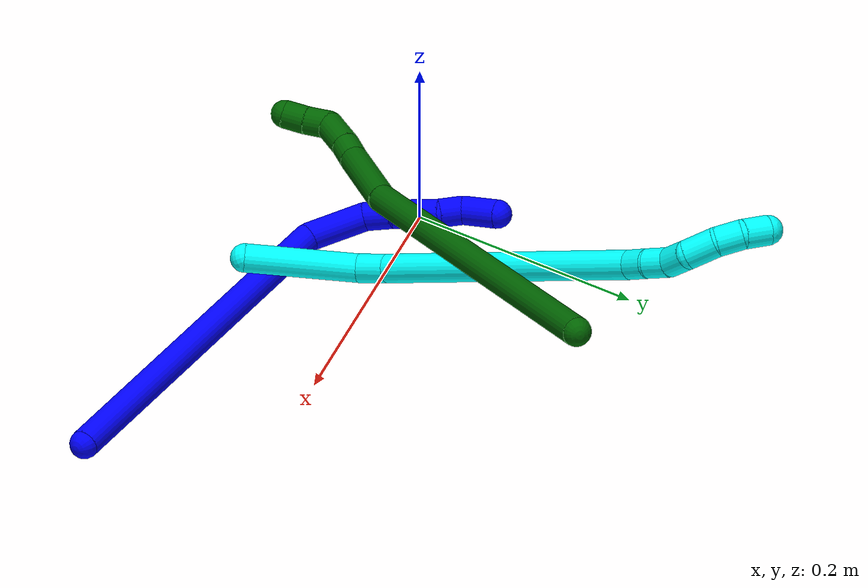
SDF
<sdf version="1.7">
 <world name="default">
  <model name="1">
   <static>0</static>
   <link name="1">
    <collision name="collision-cylinder-e_1_1_4">
     <pose>-0.016482 -0.009009 -0.163016 3.08638 -0.100614 -2.13835</pose>
     <geometry><cylinder><radius>0.0125</radius><length>0.32819</length></cylinder></geometry>
     <surface>
      <friction><ode><mu>1.16</mu><mu2>1.16</mu2><slip1>0</slip1><slip2>0</slip2></ode></friction>
      <contact><ode><kp>1e+06</kp><kd>1</kd><max_vel>0</max_vel><min_depth>0.001</min_depth></ode></contact>
     </surface>
    </collision>
    <visual name="visual-cylinder-e_1_1_4">
     <pose>-0.016482 -0.009009 -0.163016 3.08638 -0.100614 -2.13835</pose>
     <geometry><cylinder><radius>0.0125</radius><length>0.32819</length></cylinder></geometry>
     <material><ambient>0 0 1 1</ambient></material>
    </visual>
    <collision name="collision-cylinder-e_2_4_5">
     <pose>-0.042324 -0.002231 -0.344861 -2.44381 -0.363937 0.936588</pose>
     <geometry><cylinder><radius>0.0125</radius><length>0.052586</length></cylinder></geometry>
     <surface>
      <friction><ode><mu>1.16</mu><mu2>1.16</mu2><slip1>0</slip1><slip2>0</slip2></ode></friction>
      <contact><ode><kp>1e+06</kp><kd>1</kd><max_vel>0</max_vel><min_depth>0.001</min_depth></ode></contact>
     </surface>
    </collision>
    <visual name="visual-cylinder-e_2_4_5">
     <pose>-0.042324 -0.002231 -0.344861 -2.44381 -0.363937 0.936588</pose>
     <geometry><cylinder><radius>0.0125</radius><length>0.052586</length></cylinder></geometry>
     <material><ambient>0 0 1 1</ambient></material>
    </visual>
    <collision name="collision-cylinder-e_3_5_6">
     <pose>-0.056415 0.024815 -0.367709 -1.91379 -0.376904 0.528572</pose>
     <geometry><cylinder><radius>0.0125</radius><length>0.025715</length></cylinder></geometry>
     <surface>
      <friction><ode><mu>1.16</mu><mu2>1.16</mu2><slip1>0</slip1><slip2>0</slip2></ode></friction>
      <contact><ode><kp>1e+06</kp><kd>1</kd><max_vel>0</max_vel><min_depth>0.001</min_depth></ode></contact>
     </surface>
    </collision>
    <visual name="visual-cylinder-e_3_5_6">
     <pose>-0.056415 0.024815 -0.367709 -1.91379 -0.376904 0.528572</pose>
     <geometry><cylinder><radius>0.0125</radius><length>0.025715</length></cylinder></geometry>
     <material><ambient>0 0 1 1</ambient></material>
    </visual>
    <collision name="collision-cylinder-e_4_6_7">
     <pose>-0.065465 0.053141 -0.381028 -2.06966 -0.218614 0.365413</pose>
     <geometry><cylinder><radius>0.0125</radius><length>0.039819</length></cylinder></geometry>
     <surface>
      <friction><ode><mu>1.16</mu><mu2>1.16</mu2><slip1>0</slip1><slip2>0</slip2></ode></friction>
      <contact><ode><kp>1e+06</kp><kd>1</kd><max_vel>0</max_vel><min_depth>0.001</min_depth></ode></contact>
     </surface>
    </collision>
    <visual name="visual-cylinder-e_4_6_7">
     <pose>-0.065465 0.053141 -0.381028 -2.06966 -0.218614 0.365413</pose>
     <geometry><cylinder><radius>0.0125</radius><length>0.039819</length></cylinder></geometry>
     <material><ambient>0 0 1 1</ambient></material>
    </visual>
    <collision name="collision-cylinder-e_5_7_8">
     <pose>-0.071224 0.07743 -0.39789 -2.37927 -0.136872 0.338788</pose>
     <geometry><cylinder><radius>0.0125</radius><length>0.021112</length></cylinder></geometry>
     <surface>
      <friction><ode><mu>1.16</mu><mu2>1.16</mu2><slip1>0</slip1><slip2>0</slip2></ode></friction>
      <contact><ode><kp>1e+06</kp><kd>1</kd><max_vel>0</max_vel><min_depth>0.001</min_depth></ode></contact>
     </surface>
    </collision>
    <visual name="visual-cylinder-e_5_7_8">
     <pose>-0.071224 0.07743 -0.39789 -2.37927 -0.136872 0.338788</pose>
     <geometry><cylinder><radius>0.0125</radius><length>0.021112</length></cylinder></geometry>
     <material><ambient>0 0 1 1</ambient></material>
    </visual>
    <collision name="collision-cylinder-e_6_8_2">
     <pose>-0.076664 0.100091 -0.408761 -1.78182 -0.248112 0.306063</pose>
     <geometry><cylinder><radius>0.0125</radius><length>0.032577</length></cylinder></geometry>
     <surface>
      <friction><ode><mu>1.16</mu><mu2>1.16</mu2><slip1>0</slip1><slip2>0</slip2></ode></friction>
      <contact><ode><kp>1e+06</kp><kd>1</kd><max_vel>0</max_vel><min_depth>0.001</min_depth></ode></contact>
     </surface>
    </collision>
    <visual name="visual-cylinder-e_6_8_2">
     <pose>-0.076664 0.100091 -0.408761 -1.78182 -0.248112 0.306063</pose>
     <geometry><cylinder><radius>0.0125</radius><length>0.032577</length></cylinder></geometry>
     <material><ambient>0 0 1 1</ambient></material>
    </visual>
    <collision name="collision-sphere-2">
     <pose>-0.080664 0.115531 -0.412068 0 -0 0</pose>
     <geometry><sphere><radius>0.0125</radius></sphere></geometry>
     <surface>
      <friction><ode><mu>1.16</mu><mu2>1.16</mu2><slip1>0</slip1><slip2>0</slip2></ode></friction>
      <contact><ode><kp>1e+06</kp><kd>1</kd><max_vel>0</max_vel><min_depth>0.001</min_depth></ode></contact>
     </surface>
    </collision>
    <visual name="visual-sphere-2">
     <pose>-0.080664 0.115531 -0.412068 0 -0 0</pose>
     <geometry><sphere><radius>0.0125</radius></sphere></geometry>
     <material><ambient>0 0 1 1</ambient></material>
    </visual>
    <collision name="collision-sphere-4">
     <pose>-0.032965 -0.018019 -0.326033 0 -0 0</pose>
     <geometry><sphere><radius>0.0125</radius></sphere></geometry>
     <surface>
      <friction><ode><mu>1.16</mu><mu2>1.16</mu2><slip1>0</slip1><slip2>0</slip2></ode></friction>
      <contact><ode><kp>1e+06</kp><kd>1</kd><max_vel>0</max_vel><min_depth>0.001</min_depth></ode></contact>
     </surface>
    </collision>
    <visual name="visual-sphere-4">
     <pose>-0.032965 -0.018019 -0.326033 0 -0 0</pose>
     <geometry><sphere><radius>0.0125</radius></sphere></geometry>
     <material><ambient>0 0 1 1</ambient></material>
    </visual>
    <collision name="collision-sphere-1">
     <geometry><sphere><radius>0.0125</radius></sphere></geometry>
     <surface>
      <friction><ode><mu>1.16</mu><mu2>1.16</mu2><slip1>0</slip1><slip2>0</slip2></ode></friction>
      <contact><ode><kp>1e+06</kp><kd>1</kd><max_vel>0</max_vel><min_depth>0.001</min_depth></ode></contact>
     </surface>
    </collision>
    <visual name="visual-sphere-1">
     <geometry><sphere><radius>0.0125</radius></sphere></geometry>
     <material><ambient>0 0 1 1</ambient></material>
    </visual>
    <collision name="collision-sphere-8">
     <pose>-0.072664 0.084652 -0.405453 0 -0 0</pose>
     <geometry><sphere><radius>0.0125</radius></sphere></geometry>
     <surface>
      <friction><ode><mu>1.16</mu><mu2>1.16</mu2><slip1>0</slip1><slip2>0</slip2></ode></friction>
      <contact><ode><kp>1e+06</kp><kd>1</kd><max_vel>0</max_vel><min_depth>0.001</min_depth></ode></contact>
     </surface>
    </collision>
    <visual name="visual-sphere-8">
     <pose>-0.072664 0.084652 -0.405453 0 -0 0</pose>
     <geometry><sphere><radius>0.0125</radius></sphere></geometry>
     <material><ambient>0 0 1 1</ambient></material>
    </visual>
    <collision name="collision-sphere-5">
     <pose>-0.051683 0.013556 -0.363689 0 -0 0</pose>
     <geometry><sphere><radius>0.0125</radius></sphere></geometry>
     <surface>
      <friction><ode><mu>1.16</mu><mu2>1.16</mu2><slip1>0</slip1><slip2>0</slip2></ode></friction>
      <contact><ode><kp>1e+06</kp><kd>1</kd><max_vel>0</max_vel><min_depth>0.001</min_depth></ode></contact>
     </surface>
    </collision>
    <visual name="visual-sphere-5">
     <pose>-0.051683 0.013556 -0.363689 0 -0 0</pose>
     <geometry><sphere><radius>0.0125</radius></sphere></geometry>
     <material><ambient>0 0 1 1</ambient></material>
    </visual>
    <collision name="collision-sphere-6">
     <pose>-0.061147 0.036074 -0.37173 0 -0 0</pose>
     <geometry><sphere><radius>0.0125</radius></sphere></geometry>
     <surface>
      <friction><ode><mu>1.16</mu><mu2>1.16</mu2><slip1>0</slip1><slip2>0</slip2></ode></friction>
      <contact><ode><kp>1e+06</kp><kd>1</kd><max_vel>0</max_vel><min_depth>0.001</min_depth></ode></contact>
     </surface>
    </collision>
    <visual name="visual-sphere-6">
     <pose>-0.061147 0.036074 -0.37173 0 -0 0</pose>
     <geometry><sphere><radius>0.0125</radius></sphere></geometry>
     <material><ambient>0 0 1 1</ambient></material>
    </visual>
    <collision name="collision-sphere-7">
     <pose>-0.069783 0.070208 -0.390327 0 -0 0</pose>
     <geometry><sphere><radius>0.0125</radius></sphere></geometry>
     <surface>
      <friction><ode><mu>1.16</mu><mu2>1.16</mu2><slip1>0</slip1><slip2>0</slip2></ode></friction>
      <contact><ode><kp>1e+06</kp><kd>1</kd><max_vel>0</max_vel><min_depth>0.001</min_depth></ode></contact>
     </surface>
    </collision>
    <visual name="visual-sphere-7">
     <pose>-0.069783 0.070208 -0.390327 0 -0 0</pose>
     <geometry><sphere><radius>0.0125</radius></sphere></geometry>
     <material><ambient>0 0 1 1</ambient></material>
    </visual>
    <inertial>
     <pose>-0.031387 0.009151 -0.23596 0 -0 0</pose>
     <mass>0.5</mass>
     <inertia>
      <ixx>-0.004034</ixx>
      <ixy>0</ixy>
      <ixz>0</ixz>
      <iyy>-0.000864</iyy>
      <iyz>0</iyz>
      <izz>0.000415</izz>
     </inertia>
    </inertial>
   </link>
   <pose>0.388502 -0.114221 0.080601 0.302176 1.24822 0.120667</pose>
  </model>
  <model name="3">
   <static>0</static>
   <link name="3">
    <collision name="collision-cylinder-e_1_1_4">
     <pose>-0.018673 0.025532 0.036896 -0.605334 -0.394379 0.124609</pose>
     <geometry><cylinder><radius>0.0125</radius><length>0.097198</length></cylinder></geometry>
     <surface>
      <friction><ode><mu>1.16</mu><mu2>1.16</mu2><slip1>0</slip1><slip2>0</slip2></ode></friction>
      <contact><ode><kp>1e+06</kp><kd>1</kd><max_vel>0</max_vel><min_depth>0.001</min_depth></ode></contact>
     </surface>
    </collision>
    <visual name="visual-cylinder-e_1_1_4">
     <pose>-0.018673 0.025532 0.036896 -0.605334 -0.394379 0.124609</pose>
     <geometry><cylinder><radius>0.0125</radius><length>0.097198</length></cylinder></geometry>
     <material><ambient>0.003922 1 0.996078 1</ambient></material>
    </visual>
    <collision name="collision-cylinder-e_2_4_5">
     <pose>-0.037482 0.055346 0.086834 -0.317299 -0.009873 0.00158</pose>
     <geometry><cylinder><radius>0.0125</radius><length>0.027456</length></cylinder></geometry>
     <surface>
      <friction><ode><mu>1.16</mu><mu2>1.16</mu2><slip1>0</slip1><slip2>0</slip2></ode></friction>
      <contact><ode><kp>1e+06</kp><kd>1</kd><max_vel>0</max_vel><min_depth>0.001</min_depth></ode></contact>
     </surface>
    </collision>
    <visual name="visual-cylinder-e_2_4_5">
     <pose>-0.037482 0.055346 0.086834 -0.317299 -0.009873 0.00158</pose>
     <geometry><cylinder><radius>0.0125</radius><length>0.027456</length></cylinder></geometry>
     <material><ambient>0.003922 1 0.996078 1</ambient></material>
    </visual>
    <collision name="collision-cylinder-e_3_5_6">
     <pose>-0.027229 0.089054 0.216009 -0.248151 0.086503 -0.010795</pose>
     <geometry><cylinder><radius>0.0125</radius><length>0.240506</length></cylinder></geometry>
     <surface>
      <friction><ode><mu>1.16</mu><mu2>1.16</mu2><slip1>0</slip1><slip2>0</slip2></ode></friction>
      <contact><ode><kp>1e+06</kp><kd>1</kd><max_vel>0</max_vel><min_depth>0.001</min_depth></ode></contact>
     </surface>
    </collision>
    <visual name="visual-cylinder-e_3_5_6">
     <pose>-0.027229 0.089054 0.216009 -0.248151 0.086503 -0.010795</pose>
     <geometry><cylinder><radius>0.0125</radius><length>0.240506</length></cylinder></geometry>
     <material><ambient>0.003922 1 0.996078 1</ambient></material>
    </visual>
    <collision name="collision-cylinder-e_4_6_7">
     <pose>-0.014141 0.119645 0.341942 -0.11833 0.266888 -0.015903</pose>
     <geometry><cylinder><radius>0.0125</radius><length>0.020462</length></cylinder></geometry>
     <surface>
      <friction><ode><mu>1.16</mu><mu2>1.16</mu2><slip1>0</slip1><slip2>0</slip2></ode></friction>
      <contact><ode><kp>1e+06</kp><kd>1</kd><max_vel>0</max_vel><min_depth>0.001</min_depth></ode></contact>
     </surface>
    </collision>
    <visual name="visual-cylinder-e_4_6_7">
     <pose>-0.014141 0.119645 0.341942 -0.11833 0.266888 -0.015903</pose>
     <geometry><cylinder><radius>0.0125</radius><length>0.020462</length></cylinder></geometry>
     <material><ambient>0.003922 1 0.996078 1</ambient></material>
    </visual>
    <collision name="collision-cylinder-e_5_7_8">
     <pose>-0.010624 0.123017 0.361827 -0.215466 0.079143 -0.008564</pose>
     <geometry><cylinder><radius>0.0125</radius><length>0.020714</length></cylinder></geometry>
     <surface>
      <friction><ode><mu>1.16</mu><mu2>1.16</mu2><slip1>0</slip1><slip2>0</slip2></ode></friction>
      <contact><ode><kp>1e+06</kp><kd>1</kd><max_vel>0</max_vel><min_depth>0.001</min_depth></ode></contact>
     </surface>
    </collision>
    <visual name="visual-cylinder-e_5_7_8">
     <pose>-0.010624 0.123017 0.361827 -0.215466 0.079143 -0.008564</pose>
     <geometry><cylinder><radius>0.0125</radius><length>0.020714</length></cylinder></geometry>
     <material><ambient>0.003922 1 0.996078 1</ambient></material>
    </visual>
    <collision name="collision-cylinder-e_6_8_9">
     <pose>-0.007343 0.123898 0.382914 0.12 0.218635 0.013186</pose>
     <geometry><cylinder><radius>0.0125</radius><length>0.022702</length></cylinder></geometry>
     <surface>
      <friction><ode><mu>1.16</mu><mu2>1.16</mu2><slip1>0</slip1><slip2>0</slip2></ode></friction>
      <contact><ode><kp>1e+06</kp><kd>1</kd><max_vel>0</max_vel><min_depth>0.001</min_depth></ode></contact>
     </surface>
    </collision>
    <visual name="visual-cylinder-e_6_8_9">
     <pose>-0.007343 0.123898 0.382914 0.12 0.218635 0.013186</pose>
     <geometry><cylinder><radius>0.0125</radius><length>0.022702</length></cylinder></geometry>
     <material><ambient>0.003922 1 0.996078 1</ambient></material>
    </visual>
    <collision name="collision-cylinder-e_7_9_10">
     <pose>-0.008954 0.122524 0.406663 0.003724 -0.309225 -0.00058</pose>
     <geometry><cylinder><radius>0.0125</radius><length>0.026765</length></cylinder></geometry>
     <surface>
      <friction><ode><mu>1.16</mu><mu2>1.16</mu2><slip1>0</slip1><slip2>0</slip2></ode></friction>
      <contact><ode><kp>1e+06</kp><kd>1</kd><max_vel>0</max_vel><min_depth>0.001</min_depth></ode></contact>
     </surface>
    </collision>
    <visual name="visual-cylinder-e_7_9_10">
     <pose>-0.008954 0.122524 0.406663 0.003724 -0.309225 -0.00058</pose>
     <geometry><cylinder><radius>0.0125</radius><length>0.026765</length></cylinder></geometry>
     <material><ambient>0.003922 1 0.996078 1</ambient></material>
    </visual>
    <collision name="collision-cylinder-e_8_10_11">
     <pose>-0.018312 0.124397 0.428966 -0.198352 -0.496925 0.050478</pose>
     <geometry><cylinder><radius>0.0125</radius><length>0.022174</length></cylinder></geometry>
     <surface>
      <friction><ode><mu>1.16</mu><mu2>1.16</mu2><slip1>0</slip1><slip2>0</slip2></ode></friction>
      <contact><ode><kp>1e+06</kp><kd>1</kd><max_vel>0</max_vel><min_depth>0.001</min_depth></ode></contact>
     </surface>
    </collision>
    <visual name="visual-cylinder-e_8_10_11">
     <pose>-0.018312 0.124397 0.428966 -0.198352 -0.496925 0.050478</pose>
     <geometry><cylinder><radius>0.0125</radius><length>0.022174</length></cylinder></geometry>
     <material><ambient>0.003922 1 0.996078 1</ambient></material>
    </visual>
    <collision name="collision-cylinder-e_9_11_2">
     <pose>-0.031258 0.13021 0.445407 -0.514493 -0.769415 0.212228</pose>
     <geometry><cylinder><radius>0.0125</radius><length>0.022023</length></cylinder></geometry>
     <surface>
      <friction><ode><mu>1.16</mu><mu2>1.16</mu2><slip1>0</slip1><slip2>0</slip2></ode></friction>
      <contact><ode><kp>1e+06</kp><kd>1</kd><max_vel>0</max_vel><min_depth>0.001</min_depth></ode></contact>
     </surface>
    </collision>
    <visual name="visual-cylinder-e_9_11_2">
     <pose>-0.031258 0.13021 0.445407 -0.514493 -0.769415 0.212228</pose>
     <geometry><cylinder><radius>0.0125</radius><length>0.022023</length></cylinder></geometry>
     <material><ambient>0.003922 1 0.996078 1</ambient></material>
    </visual>
    <collision name="collision-sphere-2">
     <pose>-0.038919 0.134102 0.452293 0 -0 0</pose>
     <geometry><sphere><radius>0.0125</radius></sphere></geometry>
     <surface>
      <friction><ode><mu>1.16</mu><mu2>1.16</mu2><slip1>0</slip1><slip2>0</slip2></ode></friction>
      <contact><ode><kp>1e+06</kp><kd>1</kd><max_vel>0</max_vel><min_depth>0.001</min_depth></ode></contact>
     </surface>
    </collision>
    <visual name="visual-sphere-2">
     <pose>-0.038919 0.134102 0.452293 0 -0 0</pose>
     <geometry><sphere><radius>0.0125</radius></sphere></geometry>
     <material><ambient>0.003922 1 0.996078 1</ambient></material>
    </visual>
    <collision name="collision-sphere-11">
     <pose>-0.023598 0.126317 0.438521 0 -0 0</pose>
     <geometry><sphere><radius>0.0125</radius></sphere></geometry>
     <surface>
      <friction><ode><mu>1.16</mu><mu2>1.16</mu2><slip1>0</slip1><slip2>0</slip2></ode></friction>
      <contact><ode><kp>1e+06</kp><kd>1</kd><max_vel>0</max_vel><min_depth>0.001</min_depth></ode></contact>
     </surface>
    </collision>
    <visual name="visual-sphere-11">
     <pose>-0.023598 0.126317 0.438521 0 -0 0</pose>
     <geometry><sphere><radius>0.0125</radius></sphere></geometry>
     <material><ambient>0.003922 1 0.996078 1</ambient></material>
    </visual>
    <collision name="collision-sphere-10">
     <pose>-0.013026 0.122476 0.419411 0 -0 0</pose>
     <geometry><sphere><radius>0.0125</radius></sphere></geometry>
     <surface>
      <friction><ode><mu>1.16</mu><mu2>1.16</mu2><slip1>0</slip1><slip2>0</slip2></ode></friction>
      <contact><ode><kp>1e+06</kp><kd>1</kd><max_vel>0</max_vel><min_depth>0.001</min_depth></ode></contact>
     </surface>
    </collision>
    <visual name="visual-sphere-10">
     <pose>-0.013026 0.122476 0.419411 0 -0 0</pose>
     <geometry><sphere><radius>0.0125</radius></sphere></geometry>
     <material><ambient>0.003922 1 0.996078 1</ambient></material>
    </visual>
    <collision name="collision-sphere-9">
     <pose>-0.004881 0.122571 0.393916 0 -0 0</pose>
     <geometry><sphere><radius>0.0125</radius></sphere></geometry>
     <surface>
      <friction><ode><mu>1.16</mu><mu2>1.16</mu2><slip1>0</slip1><slip2>0</slip2></ode></friction>
      <contact><ode><kp>1e+06</kp><kd>1</kd><max_vel>0</max_vel><min_depth>0.001</min_depth></ode></contact>
     </surface>
    </collision>
    <visual name="visual-sphere-9">
     <pose>-0.004881 0.122571 0.393916 0 -0 0</pose>
     <geometry><sphere><radius>0.0125</radius></sphere></geometry>
     <material><ambient>0.003922 1 0.996078 1</ambient></material>
    </visual>
    <collision name="collision-sphere-4">
     <pose>-0.037347 0.051064 0.073792 0 -0 0</pose>
     <geometry><sphere><radius>0.0125</radius></sphere></geometry>
     <surface>
      <friction><ode><mu>1.16</mu><mu2>1.16</mu2><slip1>0</slip1><slip2>0</slip2></ode></friction>
      <contact><ode><kp>1e+06</kp><kd>1</kd><max_vel>0</max_vel><min_depth>0.001</min_depth></ode></contact>
     </surface>
    </collision>
    <visual name="visual-sphere-4">
     <pose>-0.037347 0.051064 0.073792 0 -0 0</pose>
     <geometry><sphere><radius>0.0125</radius></sphere></geometry>
     <material><ambient>0.003922 1 0.996078 1</ambient></material>
    </visual>
    <collision name="collision-sphere-1">
     <geometry><sphere><radius>0.0125</radius></sphere></geometry>
     <surface>
      <friction><ode><mu>1.16</mu><mu2>1.16</mu2><slip1>0</slip1><slip2>0</slip2></ode></friction>
      <contact><ode><kp>1e+06</kp><kd>1</kd><max_vel>0</max_vel><min_depth>0.001</min_depth></ode></contact>
     </surface>
    </collision>
    <visual name="visual-sphere-1">
     <geometry><sphere><radius>0.0125</radius></sphere></geometry>
     <material><ambient>0.003922 1 0.996078 1</ambient></material>
    </visual>
    <collision name="collision-sphere-8">
     <pose>-0.009805 0.125224 0.371913 0 -0 0</pose>
     <geometry><sphere><radius>0.0125</radius></sphere></geometry>
     <surface>
      <friction><ode><mu>1.16</mu><mu2>1.16</mu2><slip1>0</slip1><slip2>0</slip2></ode></friction>
      <contact><ode><kp>1e+06</kp><kd>1</kd><max_vel>0</max_vel><min_depth>0.001</min_depth></ode></contact>
     </surface>
    </collision>
    <visual name="visual-sphere-8">
     <pose>-0.009805 0.125224 0.371913 0 -0 0</pose>
     <geometry><sphere><radius>0.0125</radius></sphere></geometry>
     <material><ambient>0.003922 1 0.996078 1</ambient></material>
    </visual>
    <collision name="collision-sphere-5">
     <pose>-0.037618 0.059629 0.099876 0 -0 0</pose>
     <geometry><sphere><radius>0.0125</radius></sphere></geometry>
     <surface>
      <friction><ode><mu>1.16</mu><mu2>1.16</mu2><slip1>0</slip1><slip2>0</slip2></ode></friction>
      <contact><ode><kp>1e+06</kp><kd>1</kd><max_vel>0</max_vel><min_depth>0.001</min_depth></ode></contact>
     </surface>
    </collision>
    <visual name="visual-sphere-5">
     <pose>-0.037618 0.059629 0.099876 0 -0 0</pose>
     <geometry><sphere><radius>0.0125</radius></sphere></geometry>
     <material><ambient>0.003922 1 0.996078 1</ambient></material>
    </visual>
    <collision name="collision-sphere-6">
     <pose>-0.016839 0.11848 0.332142 0 -0 0</pose>
     <geometry><sphere><radius>0.0125</radius></sphere></geometry>
     <surface>
      <friction><ode><mu>1.16</mu><mu2>1.16</mu2><slip1>0</slip1><slip2>0</slip2></ode></friction>
      <contact><ode><kp>1e+06</kp><kd>1</kd><max_vel>0</max_vel><min_depth>0.001</min_depth></ode></contact>
     </surface>
    </collision>
    <visual name="visual-sphere-6">
     <pose>-0.016839 0.11848 0.332142 0 -0 0</pose>
     <geometry><sphere><radius>0.0125</radius></sphere></geometry>
     <material><ambient>0.003922 1 0.996078 1</ambient></material>
    </visual>
    <collision name="collision-sphere-7">
     <pose>-0.011443 0.12081 0.351742 0 -0 0</pose>
     <geometry><sphere><radius>0.0125</radius></sphere></geometry>
     <surface>
      <friction><ode><mu>1.16</mu><mu2>1.16</mu2><slip1>0</slip1><slip2>0</slip2></ode></friction>
      <contact><ode><kp>1e+06</kp><kd>1</kd><max_vel>0</max_vel><min_depth>0.001</min_depth></ode></contact>
     </surface>
    </collision>
    <visual name="visual-sphere-7">
     <pose>-0.011443 0.12081 0.351742 0 -0 0</pose>
     <geometry><sphere><radius>0.0125</radius></sphere></geometry>
     <material><ambient>0.003922 1 0.996078 1</ambient></material>
    </visual>
    <inertial>
     <pose>-0.022806 0.084268 0.222624 0 -0 0</pose>
     <mass>0.5</mass>
     <inertia>
      <ixx>0.001245</ixx>
      <ixy>0</ixy>
      <ixz>0</ixz>
      <iyy>0.001222</iyy>
      <iyz>0</iyz>
      <izz>-0.000363</izz>
     </inertia>
    </inertial>
   </link>
   <pose>0.140275 -0.096295 0.050796 -0.853214 -0.403918 -0.012692</pose>
  </model>
  <model name="6">
   <static>0</static>
   <link name="6">
    <collision name="collision-cylinder-e_1_1_4">
     <pose>-0.017476 -0.04382 -0.158118 2.87124 -0.10611 -0.74451</pose>
     <geometry><cylinder><radius>0.0125</radius><length>0.330012</length></cylinder></geometry>
     <surface>
      <friction><ode><mu>1.16</mu><mu2>1.16</mu2><slip1>0</slip1><slip2>0</slip2></ode></friction>
      <contact><ode><kp>1e+06</kp><kd>1</kd><max_vel>0</max_vel><min_depth>0.001</min_depth></ode></contact>
     </surface>
    </collision>
    <visual name="visual-cylinder-e_1_1_4">
     <pose>-0.017476 -0.04382 -0.158118 2.87124 -0.10611 -0.74451</pose>
     <geometry><cylinder><radius>0.0125</radius><length>0.330012</length></cylinder></geometry>
     <material><ambient>0 0.392157 0.003922 1</ambient></material>
    </visual>
    <collision name="collision-cylinder-e_2_4_5">
     <pose>-0.043482 -0.09158 -0.35296 3.03473 -0.226983 -2.26416</pose>
     <geometry><cylinder><radius>0.0125</radius><length>0.075813</length></cylinder></geometry>
     <surface>
      <friction><ode><mu>1.16</mu><mu2>1.16</mu2><slip1>0</slip1><slip2>0</slip2></ode></friction>
      <contact><ode><kp>1e+06</kp><kd>1</kd><max_vel>0</max_vel><min_depth>0.001</min_depth></ode></contact>
     </surface>
    </collision>
    <visual name="visual-cylinder-e_2_4_5">
     <pose>-0.043482 -0.09158 -0.35296 3.03473 -0.226983 -2.26416</pose>
     <geometry><cylinder><radius>0.0125</radius><length>0.075813</length></cylinder></geometry>
     <material><ambient>0 0.392157 0.003922 1</ambient></material>
    </visual>
    <collision name="collision-cylinder-e_3_5_6">
     <pose>-0.05612 -0.097253 -0.39883 2.95429 -0.415512 -2.30324</pose>
     <geometry><cylinder><radius>0.0125</radius><length>0.020348</length></cylinder></geometry>
     <surface>
      <friction><ode><mu>1.16</mu><mu2>1.16</mu2><slip1>0</slip1><slip2>0</slip2></ode></friction>
      <contact><ode><kp>1e+06</kp><kd>1</kd><max_vel>0</max_vel><min_depth>0.001</min_depth></ode></contact>
     </surface>
    </collision>
    <visual name="visual-cylinder-e_3_5_6">
     <pose>-0.05612 -0.097253 -0.39883 2.95429 -0.415512 -2.30324</pose>
     <geometry><cylinder><radius>0.0125</radius><length>0.020348</length></cylinder></geometry>
     <material><ambient>0 0.392157 0.003922 1</ambient></material>
    </visual>
    <collision name="collision-cylinder-e_4_6_7">
     <pose>-0.065874 -0.10317 -0.422605 2.86307 -0.355396 -1.81613</pose>
     <geometry><cylinder><radius>0.0125</radius><length>0.03246</length></cylinder></geometry>
     <surface>
      <friction><ode><mu>1.16</mu><mu2>1.16</mu2><slip1>0</slip1><slip2>0</slip2></ode></friction>
      <contact><ode><kp>1e+06</kp><kd>1</kd><max_vel>0</max_vel><min_depth>0.001</min_depth></ode></contact>
     </surface>
    </collision>
    <visual name="visual-cylinder-e_4_6_7">
     <pose>-0.065874 -0.10317 -0.422605 2.86307 -0.355396 -1.81613</pose>
     <geometry><cylinder><radius>0.0125</radius><length>0.03246</length></cylinder></geometry>
     <material><ambient>0 0.392157 0.003922 1</ambient></material>
    </visual>
    <collision name="collision-cylinder-e_5_7_8">
     <pose>-0.072361 -0.115972 -0.443065 2.16556 -0.080482 -0.151404</pose>
     <geometry><cylinder><radius>0.0125</radius><length>0.020879</length></cylinder></geometry>
     <surface>
      <friction><ode><mu>1.16</mu><mu2>1.16</mu2><slip1>0</slip1><slip2>0</slip2></ode></friction>
      <contact><ode><kp>1e+06</kp><kd>1</kd><max_vel>0</max_vel><min_depth>0.001</min_depth></ode></contact>
     </surface>
    </collision>
    <visual name="visual-cylinder-e_5_7_8">
     <pose>-0.072361 -0.115972 -0.443065 2.16556 -0.080482 -0.151404</pose>
     <geometry><cylinder><radius>0.0125</radius><length>0.020879</length></cylinder></geometry>
     <material><ambient>0 0.392157 0.003922 1</ambient></material>
    </visual>
    <collision name="collision-cylinder-e_6_8_2">
     <pose>-0.075132 -0.133299 -0.453932 2.09521 -0.18978 -0.327062</pose>
     <geometry><cylinder><radius>0.0125</radius><length>0.020487</length></cylinder></geometry>
     <surface>
      <friction><ode><mu>1.16</mu><mu2>1.16</mu2><slip1>0</slip1><slip2>0</slip2></ode></friction>
      <contact><ode><kp>1e+06</kp><kd>1</kd><max_vel>0</max_vel><min_depth>0.001</min_depth></ode></contact>
     </surface>
    </collision>
    <visual name="visual-cylinder-e_6_8_2">
     <pose>-0.075132 -0.133299 -0.453932 2.09521 -0.18978 -0.327062</pose>
     <geometry><cylinder><radius>0.0125</radius><length>0.020487</length></cylinder></geometry>
     <material><ambient>0 0.392157 0.003922 1</ambient></material>
    </visual>
    <collision name="collision-sphere-2">
     <pose>-0.077065 -0.142006 -0.458969 0 -0 0</pose>
     <geometry><sphere><radius>0.0125</radius></sphere></geometry>
     <surface>
      <friction><ode><mu>1.16</mu><mu2>1.16</mu2><slip1>0</slip1><slip2>0</slip2></ode></friction>
      <contact><ode><kp>1e+06</kp><kd>1</kd><max_vel>0</max_vel><min_depth>0.001</min_depth></ode></contact>
     </surface>
    </collision>
    <visual name="visual-sphere-2">
     <pose>-0.077065 -0.142006 -0.458969 0 -0 0</pose>
     <geometry><sphere><radius>0.0125</radius></sphere></geometry>
     <material><ambient>0 0.392157 0.003922 1</ambient></material>
    </visual>
    <collision name="collision-sphere-4">
     <pose>-0.034952 -0.087641 -0.316236 0 -0 0</pose>
     <geometry><sphere><radius>0.0125</radius></sphere></geometry>
     <surface>
      <friction><ode><mu>1.16</mu><mu2>1.16</mu2><slip1>0</slip1><slip2>0</slip2></ode></friction>
      <contact><ode><kp>1e+06</kp><kd>1</kd><max_vel>0</max_vel><min_depth>0.001</min_depth></ode></contact>
     </surface>
    </collision>
    <visual name="visual-sphere-4">
     <pose>-0.034952 -0.087641 -0.316236 0 -0 0</pose>
     <geometry><sphere><radius>0.0125</radius></sphere></geometry>
     <material><ambient>0 0.392157 0.003922 1</ambient></material>
    </visual>
    <collision name="collision-sphere-1">
     <geometry><sphere><radius>0.0125</radius></sphere></geometry>
     <surface>
      <friction><ode><mu>1.16</mu><mu2>1.16</mu2><slip1>0</slip1><slip2>0</slip2></ode></friction>
      <contact><ode><kp>1e+06</kp><kd>1</kd><max_vel>0</max_vel><min_depth>0.001</min_depth></ode></contact>
     </surface>
    </collision>
    <visual name="visual-sphere-1">
     <geometry><sphere><radius>0.0125</radius></sphere></geometry>
     <material><ambient>0 0.392157 0.003922 1</ambient></material>
    </visual>
    <collision name="collision-sphere-8">
     <pose>-0.0732 -0.124591 -0.448895 0 -0 0</pose>
     <geometry><sphere><radius>0.0125</radius></sphere></geometry>
     <surface>
      <friction><ode><mu>1.16</mu><mu2>1.16</mu2><slip1>0</slip1><slip2>0</slip2></ode></friction>
      <contact><ode><kp>1e+06</kp><kd>1</kd><max_vel>0</max_vel><min_depth>0.001</min_depth></ode></contact>
     </surface>
    </collision>
    <visual name="visual-sphere-8">
     <pose>-0.0732 -0.124591 -0.448895 0 -0 0</pose>
     <geometry><sphere><radius>0.0125</radius></sphere></geometry>
     <material><ambient>0 0.392157 0.003922 1</ambient></material>
    </visual>
    <collision name="collision-sphere-5">
     <pose>-0.052013 -0.09552 -0.389684 0 -0 0</pose>
     <geometry><sphere><radius>0.0125</radius></sphere></geometry>
     <surface>
      <friction><ode><mu>1.16</mu><mu2>1.16</mu2><slip1>0</slip1><slip2>0</slip2></ode></friction>
      <contact><ode><kp>1e+06</kp><kd>1</kd><max_vel>0</max_vel><min_depth>0.001</min_depth></ode></contact>
     </surface>
    </collision>
    <visual name="visual-sphere-5">
     <pose>-0.052013 -0.09552 -0.389684 0 -0 0</pose>
     <geometry><sphere><radius>0.0125</radius></sphere></geometry>
     <material><ambient>0 0.392157 0.003922 1</ambient></material>
    </visual>
    <collision name="collision-sphere-6">
     <pose>-0.060227 -0.098986 -0.407975 0 -0 0</pose>
     <geometry><sphere><radius>0.0125</radius></sphere></geometry>
     <surface>
      <friction><ode><mu>1.16</mu><mu2>1.16</mu2><slip1>0</slip1><slip2>0</slip2></ode></friction>
      <contact><ode><kp>1e+06</kp><kd>1</kd><max_vel>0</max_vel><min_depth>0.001</min_depth></ode></contact>
     </surface>
    </collision>
    <visual name="visual-sphere-6">
     <pose>-0.060227 -0.098986 -0.407975 0 -0 0</pose>
     <geometry><sphere><radius>0.0125</radius></sphere></geometry>
     <material><ambient>0 0.392157 0.003922 1</ambient></material>
    </visual>
    <collision name="collision-sphere-7">
     <pose>-0.071521 -0.107353 -0.437234 0 -0 0</pose>
     <geometry><sphere><radius>0.0125</radius></sphere></geometry>
     <surface>
      <friction><ode><mu>1.16</mu><mu2>1.16</mu2><slip1>0</slip1><slip2>0</slip2></ode></friction>
      <contact><ode><kp>1e+06</kp><kd>1</kd><max_vel>0</max_vel><min_depth>0.001</min_depth></ode></contact>
     </surface>
    </collision>
    <visual name="visual-sphere-7">
     <pose>-0.071521 -0.107353 -0.437234 0 -0 0</pose>
     <geometry><sphere><radius>0.0125</radius></sphere></geometry>
     <material><ambient>0 0.392157 0.003922 1</ambient></material>
    </visual>
    <inertial>
     <pose>-0.030788 -0.063769 -0.238648 0 -0 0</pose>
     <mass>0.5</mass>
     <inertia>
      <ixx>0.000109</ixx>
      <ixy>0</ixy>
      <ixz>0</ixz>
      <iyy>-0.00412</iyy>
      <iyz>0</iyz>
      <izz>0.001101</izz>
     </inertia>
    </inertial>
   </link>
   <pose>0.186081 0.234525 0.20272 -0.272004 0.901401 0.421939</pose>
  </model>
 </world>
</sdf>
